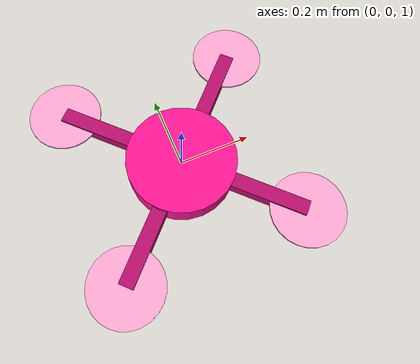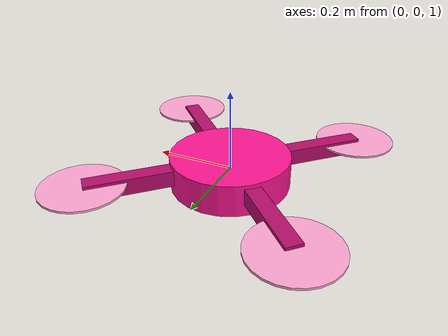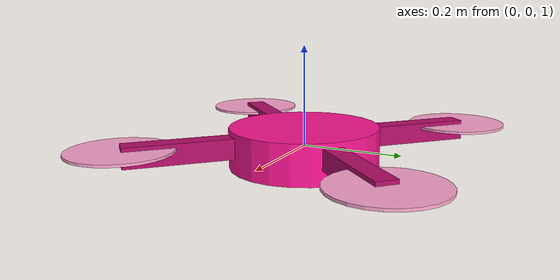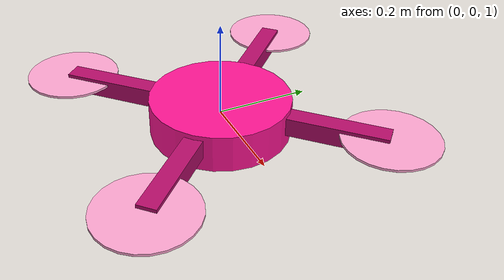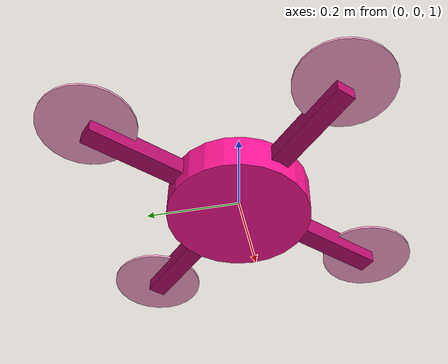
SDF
<?xml version="1.0" ?>
<sdf version="1.8">
  <model name="quadrotor">
    <pose>0 0 1.0 0 0 0</pose>
    <link name="base_link">
      <pose>0 0 0 0 0 0</pose>
      <inertial>
        <pose>0 0 0 0 0 0</pose>
        <mass>1.5</mass>
        <inertia>
          <ixx>0.00925</ixx><ixy>0</ixy><ixz>0</ixz>
          <iyy>0.00925</iyy><iyz>0</iyz>
          <izz>0.01688</izz>
        </inertia>
      </inertial>
      <visual name="body_visual">
        <geometry><cylinder><radius>0.15</radius><length>0.08</length></cylinder></geometry>
        <material><ambient>1.0 0.08 0.58 1</ambient><diffuse>1.0 0.08 0.58 1</diffuse></material>
      </visual>
      <collision name="body_collision">
        <geometry><cylinder><radius>0.15</radius><length>0.08</length></cylinder></geometry>
      </collision>
      <visual name="arm_0_visual">
        <pose>0.125 0.125 0.01 0 0 0.7854</pose>
        <geometry><box><size>0.354 0.04 0.04</size></box></geometry>
        <material><ambient>0.72 0.05 0.42 1</ambient><diffuse>0.72 0.05 0.42 1</diffuse></material>
      </visual>
      <visual name="arm_1_visual">
        <pose>0.125 -0.125 0.01 0 0 -0.7854</pose>
        <geometry><box><size>0.354 0.04 0.04</size></box></geometry>
        <material><ambient>0.72 0.05 0.42 1</ambient><diffuse>0.72 0.05 0.42 1</diffuse></material>
      </visual>
      <visual name="arm_2_visual">
        <pose>-0.125 -0.125 0.01 0 0 0.7854</pose>
        <geometry><box><size>0.354 0.04 0.04</size></box></geometry>
        <material><ambient>0.72 0.05 0.42 1</ambient><diffuse>0.72 0.05 0.42 1</diffuse></material>
      </visual>
      <visual name="arm_3_visual">
        <pose>-0.125 0.125 0.01 0 0 -0.7854</pose>
        <geometry><box><size>0.354 0.04 0.04</size></box></geometry>
        <material><ambient>0.72 0.05 0.42 1</ambient><diffuse>0.72 0.05 0.42 1</diffuse></material>
      </visual>
      <sensor name="imu_sensor" type="imu">
        <always_on>true</always_on>
        <update_rate>100</update_rate>
        <topic>quadrotor/imu</topic>
      </sensor>
    </link>
    <link name="rotor_0">
      <pose relative_to="base_link">0.25 0.25 0.02 0 0 0</pose>
      <inertial>
        <pose>0 0 0 0 0 0</pose>
        <mass>0.05</mass>
        <inertia><ixx>0.0001</ixx><ixy>0</ixy><ixz>0</ixz><iyy>0.0001</iyy><iyz>0</iyz><izz>0.0002</izz></inertia>
      </inertial>
      <visual name="rotor_0_visual">
        <geometry><cylinder><radius>0.1</radius><length>0.005</length></cylinder></geometry>
        <material><ambient>1.0 0.65 0.82 1</ambient><diffuse>1.0 0.65 0.82 1</diffuse></material>
      </visual>
      <collision name="rotor_0_collision">
        <geometry><cylinder><radius>0.1</radius><length>0.005</length></cylinder></geometry>
      </collision>
    </link>
    <joint name="rotor_0_joint" type="revolute">
      <parent>base_link</parent>
      <child>rotor_0</child>
      <!-- Rotor spin axis (motor model drives angular velocity on this joint). -->
      <axis>
        <xyz>0 0 1</xyz>
        <limit>
          <lower>-1000000</lower>
          <upper>1000000</upper>
          <!-- Gazebo warns when velocity control is used but joint axis has no effort limit. -->
          <effort>1000000</effort>
          <velocity>1000000</velocity>
        </limit>
        <dynamics>
          <damping>0.01</damping>
        </dynamics>
      </axis>
    </joint>
    <link name="rotor_1">
      <pose relative_to="base_link">0.25 -0.25 0.02 0 0 0</pose>
      <inertial>
        <pose>0 0 0 0 0 0</pose>
        <mass>0.05</mass>
        <inertia><ixx>0.0001</ixx><ixy>0</ixy><ixz>0</ixz><iyy>0.0001</iyy><iyz>0</iyz><izz>0.0002</izz></inertia>
      </inertial>
      <visual name="rotor_1_visual">
        <geometry><cylinder><radius>0.1</radius><length>0.005</length></cylinder></geometry>
        <material><ambient>1.0 0.65 0.82 1</ambient><diffuse>1.0 0.65 0.82 1</diffuse></material>
      </visual>
      <collision name="rotor_1_collision">
        <geometry><cylinder><radius>0.1</radius><length>0.005</length></cylinder></geometry>
      </collision>
    </link>
    <joint name="rotor_1_joint" type="revolute">
      <parent>base_link</parent>
      <child>rotor_1</child>
      <!-- Rotor spin axis (motor model drives angular velocity on this joint). -->
      <axis>
        <xyz>0 0 1</xyz>
        <limit>
          <lower>-1000000</lower>
          <upper>1000000</upper>
          <!-- Gazebo warns when velocity control is used but joint axis has no effort limit. -->
          <effort>1000000</effort>
          <velocity>1000000</velocity>
        </limit>
        <dynamics>
          <damping>0.01</damping>
        </dynamics>
      </axis>
    </joint>
    <link name="rotor_2">
      <pose relative_to="base_link">-0.25 -0.25 0.02 0 0 0</pose>
      <inertial>
        <pose>0 0 0 0 0 0</pose>
        <mass>0.05</mass>
        <inertia><ixx>0.0001</ixx><ixy>0</ixy><ixz>0</ixz><iyy>0.0001</iyy><iyz>0</iyz><izz>0.0002</izz></inertia>
      </inertial>
      <visual name="rotor_2_visual">
        <geometry><cylinder><radius>0.1</radius><length>0.005</length></cylinder></geometry>
        <material><ambient>1.0 0.65 0.82 1</ambient><diffuse>1.0 0.65 0.82 1</diffuse></material>
      </visual>
      <collision name="rotor_2_collision">
        <geometry><cylinder><radius>0.1</radius><length>0.005</length></cylinder></geometry>
      </collision>
    </link>
    <joint name="rotor_2_joint" type="revolute">
      <parent>base_link</parent>
      <child>rotor_2</child>
      <!-- Rotor spin axis (motor model drives angular velocity on this joint). -->
      <axis>
        <xyz>0 0 1</xyz>
        <limit>
          <lower>-1000000</lower>
          <upper>1000000</upper>
          <!-- Gazebo warns when velocity control is used but joint axis has no effort limit. -->
          <effort>1000000</effort>
          <velocity>1000000</velocity>
        </limit>
        <dynamics>
          <damping>0.01</damping>
        </dynamics>
      </axis>
    </joint>
    <link name="rotor_3">
      <pose relative_to="base_link">-0.25 0.25 0.02 0 0 0</pose>
      <inertial>
        <pose>0 0 0 0 0 0</pose>
        <mass>0.05</mass>
        <inertia><ixx>0.0001</ixx><ixy>0</ixy><ixz>0</ixz><iyy>0.0001</iyy><iyz>0</iyz><izz>0.0002</izz></inertia>
      </inertial>
      <visual name="rotor_3_visual">
        <geometry><cylinder><radius>0.1</radius><length>0.005</length></cylinder></geometry>
        <material><ambient>1.0 0.65 0.82 1</ambient><diffuse>1.0 0.65 0.82 1</diffuse></material>
      </visual>
      <collision name="rotor_3_collision">
        <geometry><cylinder><radius>0.1</radius><length>0.005</length></cylinder></geometry>
      </collision>
    </link>
    <joint name="rotor_3_joint" type="revolute">
      <parent>base_link</parent>
      <child>rotor_3</child>
      <!-- Rotor spin axis (motor model drives angular velocity on this joint). -->
      <axis>
        <xyz>0 0 1</xyz>
        <limit>
          <lower>-1000000</lower>
          <upper>1000000</upper>
          <!-- Gazebo warns when velocity control is used but joint axis has no effort limit. -->
          <effort>1000000</effort>
          <velocity>1000000</velocity>
        </limit>
        <dynamics>
          <damping>0.01</damping>
        </dynamics>
      </axis>
    </joint>
    <plugin filename="gz-sim-multicopter-motor-model-system"
            name="gz::sim::systems::MulticopterMotorModel">
      <robotNamespace>quadrotor</robotNamespace>
      <jointName>rotor_0_joint</jointName>
      <linkName>rotor_0</linkName>
      <turningDirection>ccw</turningDirection>
      <timeConstantUp>0.0125</timeConstantUp>
      <timeConstantDown>0.025</timeConstantDown>
      <maxRotVelocity>800.0</maxRotVelocity>
      <motorConstant>8.54858e-06</motorConstant>
      <momentConstant>0.016</momentConstant>
      <commandSubTopic>command/motor_speed</commandSubTopic>
      <actuator_number>0</actuator_number>
      <motorType>velocity</motorType>
      <rotorDragCoefficient>8.06428e-05</rotorDragCoefficient>
      <rollingMomentCoefficient>1e-06</rollingMomentCoefficient>
      <motorSpeedPubTopic>motor_speed/0</motorSpeedPubTopic>
      <rotorVelocitySlowdownSim>10</rotorVelocitySlowdownSim>
    </plugin>
    <plugin filename="gz-sim-multicopter-motor-model-system"
            name="gz::sim::systems::MulticopterMotorModel">
      <robotNamespace>quadrotor</robotNamespace>
      <jointName>rotor_1_joint</jointName>
      <linkName>rotor_1</linkName>
      <turningDirection>cw</turningDirection>
      <timeConstantUp>0.0125</timeConstantUp>
      <timeConstantDown>0.025</timeConstantDown>
      <maxRotVelocity>800.0</maxRotVelocity>
      <motorConstant>8.54858e-06</motorConstant>
      <momentConstant>0.016</momentConstant>
      <commandSubTopic>command/motor_speed</commandSubTopic>
      <actuator_number>1</actuator_number>
      <motorType>velocity</motorType>
      <rotorDragCoefficient>8.06428e-05</rotorDragCoefficient>
      <rollingMomentCoefficient>1e-06</rollingMomentCoefficient>
      <motorSpeedPubTopic>motor_speed/1</motorSpeedPubTopic>
      <rotorVelocitySlowdownSim>10</rotorVelocitySlowdownSim>
    </plugin>
    <plugin filename="gz-sim-multicopter-motor-model-system"
            name="gz::sim::systems::MulticopterMotorModel">
      <robotNamespace>quadrotor</robotNamespace>
      <jointName>rotor_2_joint</jointName>
      <linkName>rotor_2</linkName>
      <turningDirection>ccw</turningDirection>
      <timeConstantUp>0.0125</timeConstantUp>
      <timeConstantDown>0.025</timeConstantDown>
      <maxRotVelocity>800.0</maxRotVelocity>
      <motorConstant>8.54858e-06</motorConstant>
      <momentConstant>0.016</momentConstant>
      <commandSubTopic>command/motor_speed</commandSubTopic>
      <actuator_number>2</actuator_number>
      <motorType>velocity</motorType>
      <rotorDragCoefficient>8.06428e-05</rotorDragCoefficient>
      <rollingMomentCoefficient>1e-06</rollingMomentCoefficient>
      <motorSpeedPubTopic>motor_speed/2</motorSpeedPubTopic>
      <rotorVelocitySlowdownSim>10</rotorVelocitySlowdownSim>
    </plugin>
    <plugin filename="gz-sim-multicopter-motor-model-system"
            name="gz::sim::systems::MulticopterMotorModel">
      <robotNamespace>quadrotor</robotNamespace>
      <jointName>rotor_3_joint</jointName>
      <linkName>rotor_3</linkName>
      <turningDirection>cw</turningDirection>
      <timeConstantUp>0.0125</timeConstantUp>
      <timeConstantDown>0.025</timeConstantDown>
      <maxRotVelocity>800.0</maxRotVelocity>
      <motorConstant>8.54858e-06</motorConstant>
      <momentConstant>0.016</momentConstant>
      <commandSubTopic>command/motor_speed</commandSubTopic>
      <actuator_number>3</actuator_number>
      <motorType>velocity</motorType>
      <rotorDragCoefficient>8.06428e-05</rotorDragCoefficient>
      <rollingMomentCoefficient>1e-06</rollingMomentCoefficient>
      <motorSpeedPubTopic>motor_speed/3</motorSpeedPubTopic>
      <rotorVelocitySlowdownSim>10</rotorVelocitySlowdownSim>
    </plugin>
    <plugin filename="gz-sim-multicopter-control-system"
            name="gz::sim::systems::MulticopterVelocityControl">
      <robotNamespace>quadrotor</robotNamespace>
      <commandSubTopic>cmd_vel</commandSubTopic>
      <enableSubTopic>enable</enableSubTopic>
      <comLinkName>base_link</comLinkName>
      <velocityGain>2.7 2.7 2.7</velocityGain>
      <attitudeGain>2.0 2.0 2.0</attitudeGain>
      <angularRateGain>0.15 0.15 0.15</angularRateGain>
      <maximumLinearAcceleration>2 2 2</maximumLinearAcceleration>
      <robotBaseFrameId>base_link</robotBaseFrameId>
      <odometrySubTopic>odom</odometrySubTopic>
      <odometryPubTopic>odom</odometryPubTopic>
      <rotorConfiguration>
        <rotor>
          <jointName>rotor_0_joint</jointName>
          <forceConstant>8.54858e-06</forceConstant>
          <momentConstant>0.016</momentConstant>
          <direction>1</direction>
        </rotor>
        <rotor>
          <jointName>rotor_1_joint</jointName>
          <forceConstant>8.54858e-06</forceConstant>
          <momentConstant>0.016</momentConstant>
          <direction>-1</direction>
        </rotor>
        <rotor>
          <jointName>rotor_2_joint</jointName>
          <forceConstant>8.54858e-06</forceConstant>
          <momentConstant>0.016</momentConstant>
          <direction>1</direction>
        </rotor>
        <rotor>
          <jointName>rotor_3_joint</jointName>
          <forceConstant>8.54858e-06</forceConstant>
          <momentConstant>0.016</momentConstant>
          <direction>-1</direction>
        </rotor>
      </rotorConfiguration>
    </plugin>
    <plugin filename="gz-sim-imu-system"
            name="gz::sim::systems::Imu"/>
    <plugin filename="gz-sim-odometry-publisher-system"
            name="gz::sim::systems::OdometryPublisher">
      <odom_topic>/quadrotor/odom</odom_topic>
      <odom_publish_frequency>50</odom_publish_frequency>
      <dimensions>3</dimensions>
      <robot_base_frame>base_link</robot_base_frame>
    </plugin>
  </model>
</sdf>
